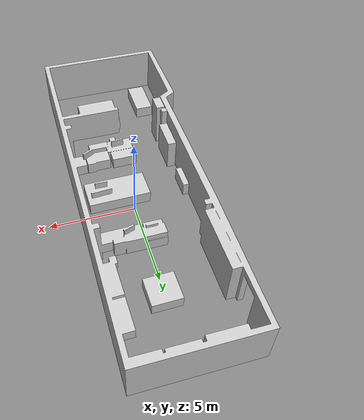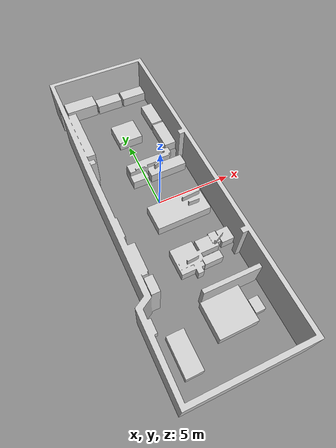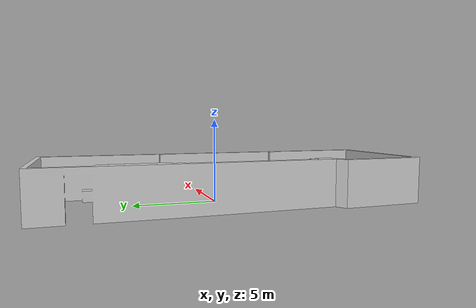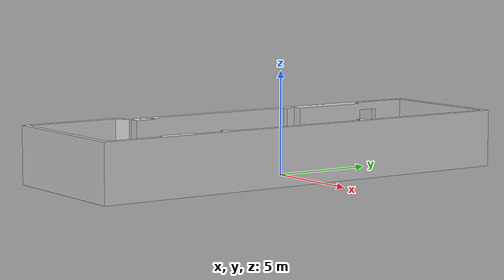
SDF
<?xml version="1.0" ?>
<sdf version="1.9">
  <model name="duatic_office">
    <link name="link">

      <collision name="collision">
        <geometry>
          <mesh>
            <uri>meshes/duatic_office.stl</uri>
            <scale>1 1 1</scale>
          </mesh>
        </geometry>
        <surface>
          <friction>
            <ode>
              <mu>0.5</mu>
              <mu2>0.5</mu2>
              <fdir1>0 0 0</fdir1>
              <slip1>0</slip1>
              <slip2>0</slip2>
            </ode>
          </friction>
        </surface>
      </collision>

      <visual name="visual">
        <geometry>
          <mesh>
            <uri>meshes/duatic_office.stl</uri>
            <scale>1 1 1</scale>
          </mesh>
        </geometry>

        <material>
          <ambient>0.8 0.8 0.8 1.0</ambient>
          <diffuse>0.8 0.8 0.8 1.0</diffuse>
          <specular>0.1 0.1 0.1 1.0</specular>
        </material>
        <meta> <layer> 2 </layer></meta>
      </visual>
    </link>
    <static>1</static>
  </model>
</sdf>
